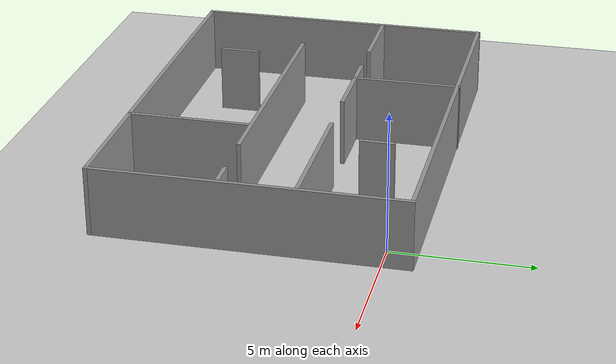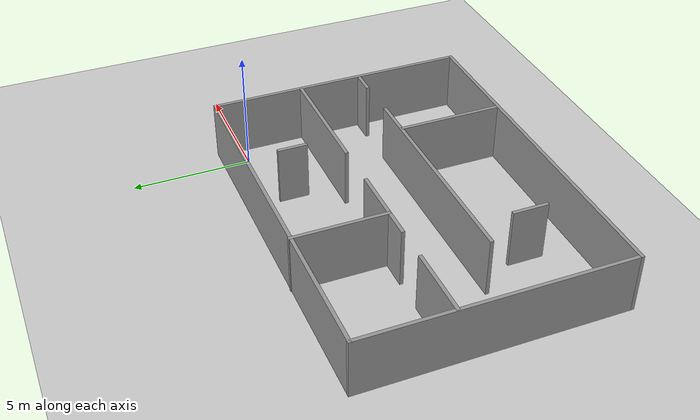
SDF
<sdf version="1.7">
 <world name="default">
  <light name="sun" type="directional">
   <pose>0 0 10 0 -0 0</pose>
   <diffuse>0.8 0.8 0.8 1</diffuse>
   <specular>0.2 0.2 0.2 1</specular>
   <attenuation>
    <range>1000</range>
    <constant>0.9</constant>
    <linear>0.01</linear>
    <quadratic>0.001</quadratic>
   </attenuation>
   <direction>-0.5 0.1 -0.9</direction>
   <spot><inner_angle>0</inner_angle><outer_angle>0</outer_angle><falloff>0</falloff></spot>
  </light>
  <gravity>0 0 -9.8</gravity>
  <magnetic_field>6e-06 2.3e-05 -4.2e-05</magnetic_field>
  <atmosphere type="adiabatic"/>
  <physics name="default_physics" default="0" type="ode">
   <max_step_size>0.001</max_step_size>
   <real_time_factor>1</real_time_factor>
   <real_time_update_rate>1000</real_time_update_rate>
  </physics>
  <scene><ambient>0.4 0.4 0.4 1</ambient><background>0.7 0.7 0.7 1</background><shadows>1</shadows></scene>
  <audio><device>default</device></audio>
  <spherical_coordinates>
   <surface_model>EARTH_WGS84</surface_model>
   <latitude_deg>0</latitude_deg>
   <longitude_deg>0</longitude_deg>
   <elevation>0</elevation>
   <heading_deg>0</heading_deg>
  </spherical_coordinates>
  <model name="ground_plane">
   <static>1</static>
   <link name="link">
    <collision name="collision">
     <geometry><plane><normal>0 0 1</normal><size>100 100</size></plane></geometry>
     <surface>
      <contact><collide_bitmask>65535</collide_bitmask></contact>
      <friction><ode><mu>100</mu><mu2>50</mu2></ode></friction>
     </surface>
    </collision>
    <visual name="visual">
     <cast_shadows>0</cast_shadows>
     <geometry><plane><normal>0 0 1</normal><size>100 100</size></plane></geometry>
     <material>
      <script><uri>file://media/materials/scripts/gazebo.material</uri><name>Gazebo/Grey</name></script>
     </material>
    </visual>
   </link>
   <pose>-6.18173 -1.37718 0 0 -0 0</pose>
  </model>
  <model name="Untitled2">
   <pose>-6.5 -4.48567 0 0 -0 0</pose>
   <link name="Wall_30">
    <collision name="Wall_30_Collision">
     <geometry><box><size>15.15 0.15 2.5</size></box></geometry>
     <pose>0 0 1.25 0 -0 0</pose>
    </collision>
    <visual name="Wall_30_Visual">
     <pose>0 0 1.25 0 -0 0</pose>
     <geometry><box><size>15.15 0.15 2.5</size></box></geometry>
     <material>
      <script><uri>file://media/materials/scripts/gazebo.material</uri><name>Gazebo/Grey</name></script>
      <ambient>1 1 1 1</ambient>
     </material>
     <meta><layer>0</layer></meta>
    </visual>
    <pose>0 5.48567 0 0 -0 0</pose>
   </link>
   <link name="Wall_32">
    <collision name="Wall_32_Collision">
     <geometry><box><size>11.15 0.15 2.5</size></box></geometry>
     <pose>0 0 1.25 0 -0 0</pose>
    </collision>
    <visual name="Wall_32_Visual">
     <pose>0 0 1.25 0 -0 0</pose>
     <geometry><box><size>11.15 0.15 2.5</size></box></geometry>
     <material>
      <script><uri>file://media/materials/scripts/gazebo.material</uri><name>Gazebo/Grey</name></script>
      <ambient>1 1 1 1</ambient>
     </material>
     <meta><layer>0</layer></meta>
    </visual>
    <pose>7.5 -0.014332 0 0 -0 -1.5708</pose>
   </link>
   <link name="Wall_33">
    <collision name="Wall_33_Collision">
     <geometry><box><size>15.15 0.15 2.5</size></box></geometry>
     <pose>0 0 1.25 0 -0 0</pose>
    </collision>
    <visual name="Wall_33_Visual">
     <pose>0 0 1.25 0 -0 0</pose>
     <geometry><box><size>15.15 0.15 2.5</size></box></geometry>
     <material>
      <script><uri>file://media/materials/scripts/gazebo.material</uri><name>Gazebo/Grey</name></script>
      <ambient>1 1 1 1</ambient>
     </material>
     <meta><layer>0</layer></meta>
    </visual>
    <pose>0 -5.51433 0 0 -0 3.14159</pose>
   </link>
   <link name="Wall_34">
    <collision name="Wall_34_Collision">
     <geometry><box><size>11.1501 0.15 2.5</size></box></geometry>
     <pose>0 0 1.25 0 -0 0</pose>
    </collision>
    <visual name="Wall_34_Visual">
     <pose>0 0 1.25 0 -0 0</pose>
     <geometry><box><size>11.1501 0.15 2.5</size></box></geometry>
     <material>
      <script><uri>file://media/materials/scripts/gazebo.material</uri><name>Gazebo/Grey</name></script>
      <ambient>1 1 1 1</ambient>
     </material>
     <meta><layer>0</layer></meta>
    </visual>
    <pose>-7.5 -0.014332 0 0 -0 1.5708</pose>
   </link>
   <link name="Wall_36">
    <collision name="Wall_36_Collision">
     <geometry><box><size>4 0.15 2.5</size></box></geometry>
     <pose>0 0 1.25 0 -0 0</pose>
    </collision>
    <visual name="Wall_36_Visual">
     <pose>0 0 1.25 0 -0 0</pose>
     <geometry><box><size>4 0.15 2.5</size></box></geometry>
     <material>
      <script><uri>file://media/materials/scripts/gazebo.material</uri><name>Gazebo/Grey</name></script>
      <ambient>1 1 1 1</ambient>
     </material>
     <meta><layer>0</layer></meta>
    </visual>
    <pose>-1.92765 3.5894 0 0 -0 -1.5708</pose>
   </link>
   <link name="Wall_38">
    <collision name="Wall_38_Collision">
     <geometry><box><size>3 0.15 2.5</size></box></geometry>
     <pose>0 0 1.25 0 -0 0</pose>
    </collision>
    <visual name="Wall_38_Visual">
     <pose>0 0 1.25 0 -0 0</pose>
     <geometry><box><size>3 0.15 2.5</size></box></geometry>
     <material>
      <script><uri>file://media/materials/scripts/gazebo.material</uri><name>Gazebo/Grey</name></script>
      <ambient>1 1 1 1</ambient>
     </material>
     <meta><layer>0</layer></meta>
    </visual>
    <pose>-6.03322 1.62934 0 0 -0 0</pose>
   </link>
   <link name="Wall_40">
    <collision name="Wall_40_Collision">
     <geometry><box><size>3.5 0.15 2.5</size></box></geometry>
     <pose>0 0 1.25 0 -0 0</pose>
    </collision>
    <visual name="Wall_40_Visual">
     <pose>0 0 1.25 0 -0 0</pose>
     <geometry><box><size>3.5 0.15 2.5</size></box></geometry>
     <material>
      <script><uri>file://media/materials/scripts/gazebo.material</uri><name>Gazebo/Grey</name></script>
      <ambient>1 1 1 1</ambient>
     </material>
     <meta><layer>0</layer></meta>
    </visual>
    <pose>-1.40299 1.64421 0 0 -0 0</pose>
   </link>
   <link name="Wall_42">
    <collision name="Wall_42_Collision">
     <geometry><box><size>5.25 0.15 2.5</size></box></geometry>
     <pose>0 0 1.25 0 -0 0</pose>
    </collision>
    <visual name="Wall_42_Visual">
     <pose>0 0 1.25 0 -0 0</pose>
     <geometry><box><size>5.25 0.15 2.5</size></box></geometry>
     <material>
      <script><uri>file://media/materials/scripts/gazebo.material</uri><name>Gazebo/Grey</name></script>
      <ambient>1 1 1 1</ambient>
     </material>
     <meta><layer>0</layer></meta>
    </visual>
    <pose>4.83888 1.66695 0 0 -0 0</pose>
   </link>
   <link name="Wall_44">
    <collision name="Wall_44_Collision">
     <geometry><box><size>1.25 0.15 2.5</size></box></geometry>
     <pose>0 0 1.25 0 -0 0</pose>
    </collision>
    <visual name="Wall_44_Visual">
     <pose>0 0 1.25 0 -0 0</pose>
     <geometry><box><size>1.25 0.15 2.5</size></box></geometry>
     <material>
      <script><uri>file://media/materials/scripts/gazebo.material</uri><name>Gazebo/Grey</name></script>
      <ambient>1 1 1 1</ambient>
     </material>
     <meta><layer>0</layer></meta>
    </visual>
    <pose>3.40319 3.52749 0 0 -0 -1.5708</pose>
   </link>
   <link name="Wall_46">
    <collision name="Wall_46_Collision">
     <geometry><box><size>9.5 0.15 2.5</size></box></geometry>
     <pose>0 0 1.25 0 -0 0</pose>
    </collision>
    <visual name="Wall_46_Visual">
     <pose>0 0 1.25 0 -0 0</pose>
     <geometry><box><size>9.5 0.15 2.5</size></box></geometry>
     <material>
      <script><uri>file://media/materials/scripts/gazebo.material</uri><name>Gazebo/Grey</name></script>
      <ambient>1 1 1 1</ambient>
     </material>
     <meta><layer>0</layer></meta>
    </visual>
    <pose>-0.08958 -1.05135 0 0 -0 0</pose>
   </link>
   <link name="Wall_48">
    <collision name="Wall_48_Collision">
     <geometry><box><size>4.5 0.15 2.5</size></box></geometry>
     <pose>0 0 1.25 0 -0 0</pose>
    </collision>
    <visual name="Wall_48_Visual">
     <pose>0 0 1.25 0 -0 0</pose>
     <geometry><box><size>4.5 0.15 2.5</size></box></geometry>
     <material>
      <script><uri>file://media/materials/scripts/gazebo.material</uri><name>Gazebo/Grey</name></script>
      <ambient>1 1 1 1</ambient>
     </material>
     <meta><layer>0</layer></meta>
    </visual>
    <pose>2.99138 -3.3059 0 0 -0 -1.5708</pose>
   </link>
   <link name="Wall_50">
    <collision name="Wall_50_Collision">
     <geometry><box><size>1 0.15 2.5</size></box></geometry>
     <pose>0 0 1.25 0 -0 0</pose>
    </collision>
    <visual name="Wall_50_Visual">
     <pose>0 0 1.25 0 -0 0</pose>
     <geometry><box><size>1 0.15 2.5</size></box></geometry>
     <material>
      <script><uri>file://media/materials/scripts/gazebo.material</uri><name>Gazebo/Grey</name></script>
      <ambient>1 1 1 1</ambient>
     </material>
     <meta><layer>0</layer></meta>
    </visual>
    <pose>6.9165 -1.01158 0 0 -0 0</pose>
   </link>
   <link name="Wall_52">
    <collision name="Wall_52_Collision">
     <geometry><box><size>1.5 0.15 2.5</size></box></geometry>
     <pose>0 0 1.25 0 -0 0</pose>
    </collision>
    <visual name="Wall_52_Visual">
     <pose>0 0 1.25 0 -0 0</pose>
     <geometry><box><size>1.5 0.15 2.5</size></box></geometry>
     <material>
      <script><uri>file://media/materials/scripts/gazebo.material</uri><name>Gazebo/Grey</name></script>
      <ambient>1 1 1 1</ambient>
     </material>
     <meta><layer>0</layer></meta>
    </visual>
    <pose>-3.6509 -3.27754 0 0 -0 -1.5708</pose>
   </link>
   <static>1</static>
  </model>
 </world>
</sdf>
